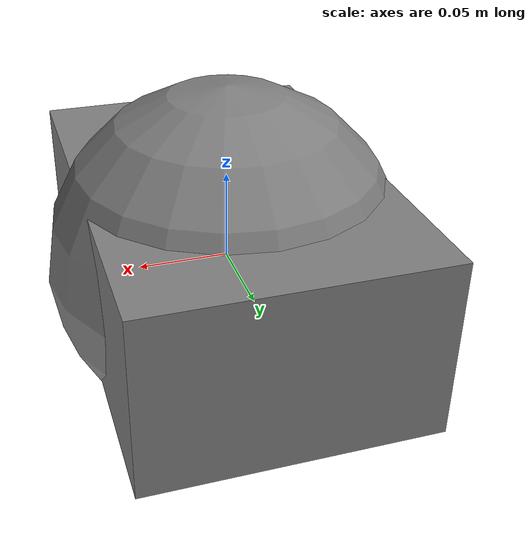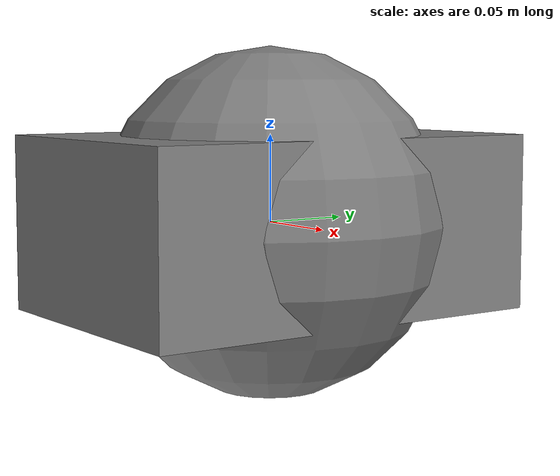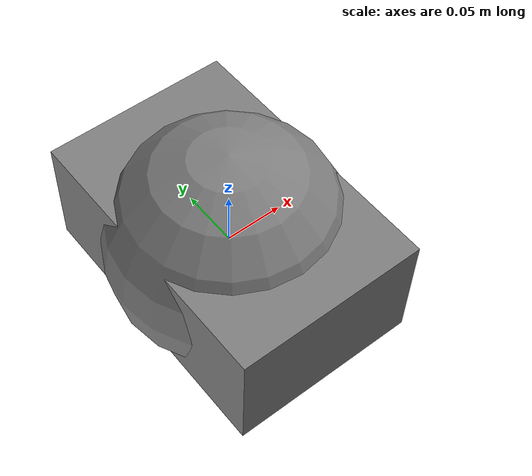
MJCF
<mujoco model="sweep_sphere_box_mg">
  <worldbody>
    <body name="a"><freejoint/><geom name="ga" type="sphere" size="0.1" margin="0.02" gap="0.03" mass="1"/></body>
    <body name="b"><freejoint/><geom name="gb" type="box" size="0.08 0.12 0.05" margin="0.02" gap="0.03" mass="1"/></body>
  </worldbody>
</mujoco>
